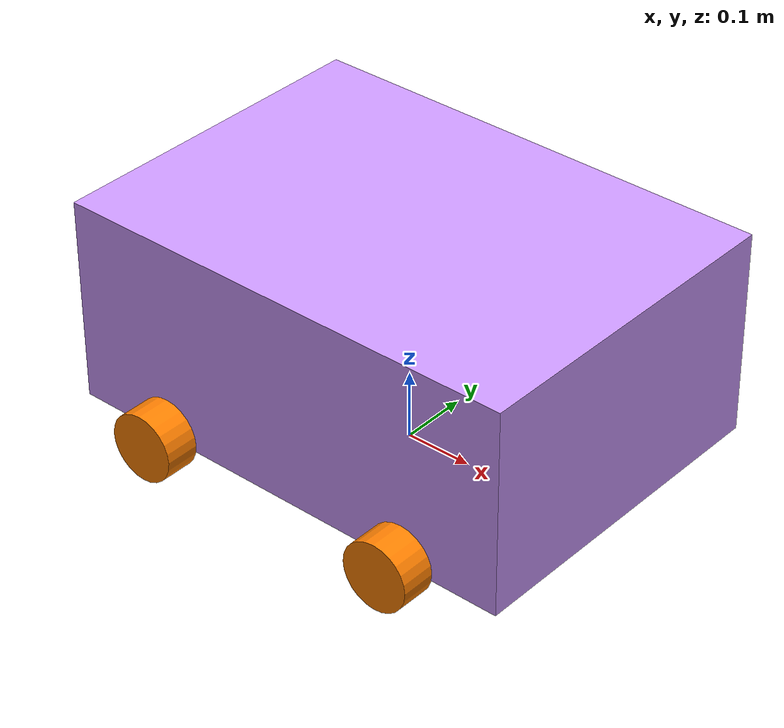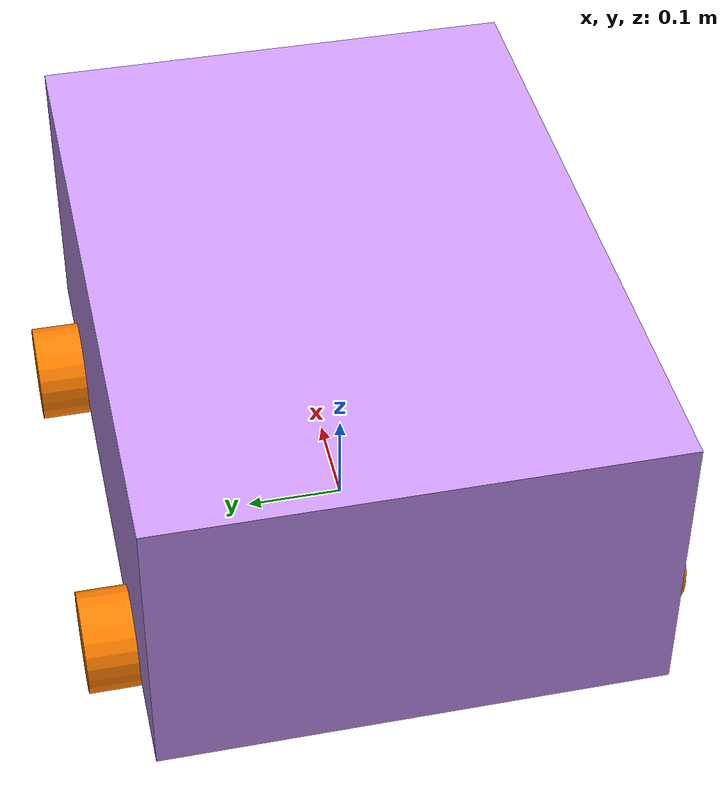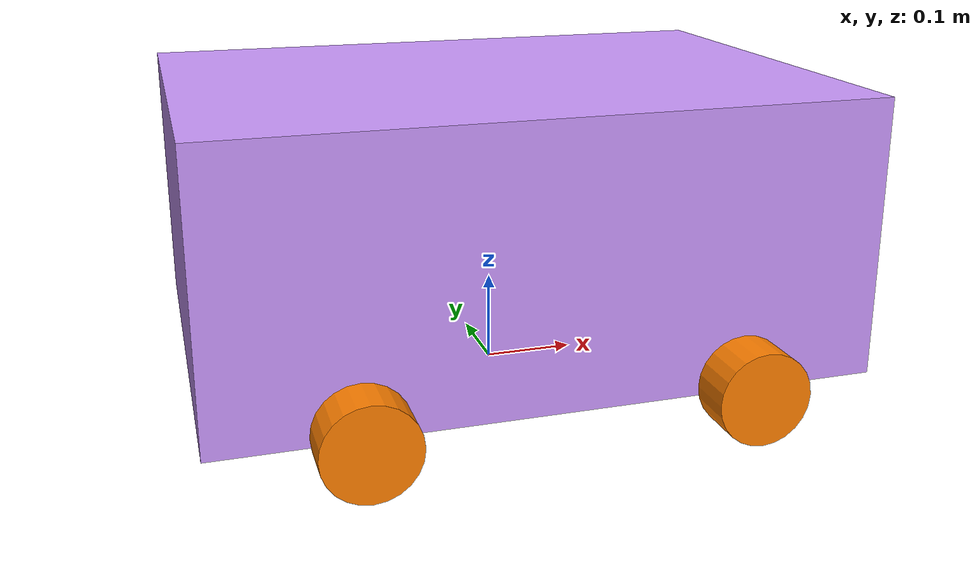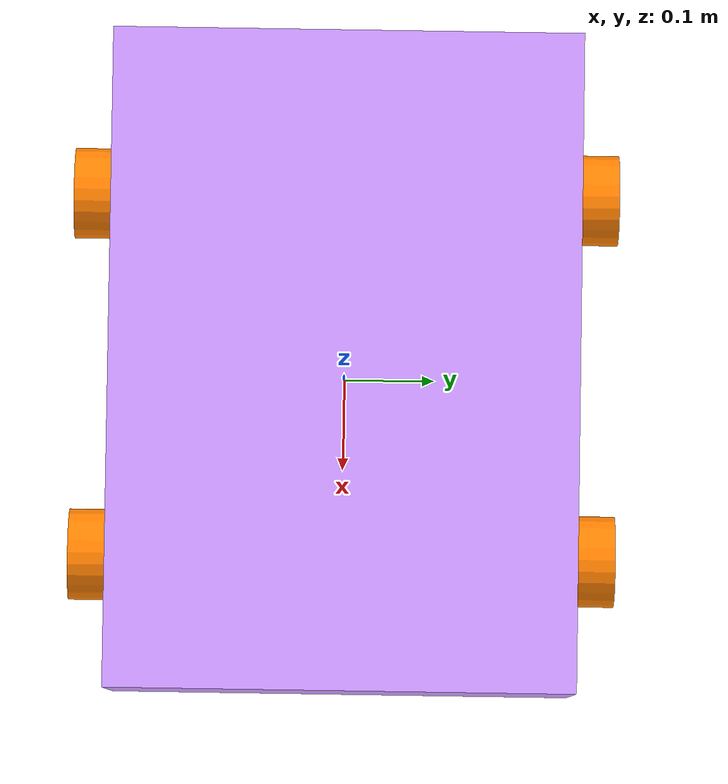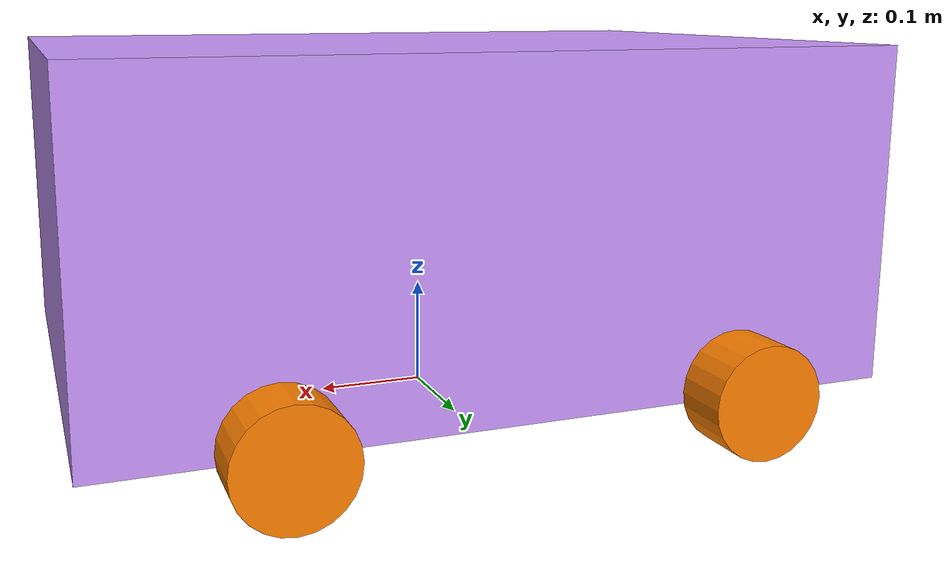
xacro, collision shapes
<?xml version="1.0"?>
<robot xmlns:xacro="http://www.ros.org/wiki/xacro">
  <xacro:property name="PI" value="3.1415926535897931" />
  <xacro:include filename="inertial_macros.xacro" />
  <xacro:include filename="$(find articubot_one)/description/mecanum_wheel/mecanum_wheel.urdf.xacro"/>

  <!-- Material Definitions -->
  <material name="white">
    <color rgba="1 1 1 1"/>
  </material>
  <material name="blue">
    <color rgba="0.2 0.2 1 1"/>
  </material>
  <material name="black">
    <color rgba="0 0 0 1"/>
  </material>
  <material name="red">
    <color rgba="1 0 0 1"/>
  </material>
  <material name="yellow">
    <color rgba="0.8 0.8 0.0 1.0"/>
  </material>
  <material name="dark_grey">
    <color rgba="0.2 0.2 0.2 1.0"/>
  </material>
  <material name="light_grey">
    <color rgba="0.4 0.4 0.4 1.0"/>
  </material>
  <material name="light_purple">
    <color rgba="0.8 0.6 1.0 1.0"/>
  </material>

  <link name="base_footprint">
  </link>

  <joint name="base_footprint_to_base_link" type="fixed">
    <origin xyz="0 0 0.04" rpy="0 0 0" />
    <parent link="base_footprint" />
    <child link="base_link" />
  </joint>

  <!-- Define base link -->
  <link name="base_link">
    <xacro:inertial_box mass="4.0990470908566525" x="0.7" y="0.5" z="0.3">
      <origin xyz="0 0 0" rpy="0 0 0"/>
    </xacro:inertial_box>
    <visual>
      <origin xyz="0 0 0" rpy="0 0 0"/>
      <geometry>
        <mesh filename="file://$(find articubot_one)/description/meshes/base_link.stl" scale="0.001 0.001 0.001"/>
      </geometry>
      <material name="light_purple"/>
    </visual>
    <collision>
      <origin xyz="0 0 0.15" rpy="0 0 0"/>
      <geometry>
        <box size="0.7 0.5 0.3"/>
      </geometry>
    </collision>
  </link>

  <!-- Upper Left Wheel -->
  <xacro:wheel_v0 prefix="upper" parent="base_link">
    <origin xyz="0.2 0.275 0.01" rpy="0 0 ${PI}"/>
    <axis xyz="0 1 0"/>
  </xacro:wheel_v0>

  <!-- Lower Left Wheel -->
  <xacro:wheel_v0 prefix="lower" parent="base_link">
    <origin xyz="-0.2 0.275 0.01" rpy="0 0 ${PI}"/>
    <axis xyz="0 1 0"/>
  </xacro:wheel_v0>

  <!-- Upper Right Wheel -->
  <xacro:wheel_v1 prefix="upper" parent="base_link">
    <origin xyz="0.2 -0.275 0.01" rpy="0 0 0"/>
    <axis xyz="0 -1 0"/>
  </xacro:wheel_v1>

  <!-- Lower Right Wheel -->
  <xacro:wheel_v1 prefix="lower" parent="base_link">
    <origin xyz="-0.2 -0.275 0.01" rpy="0 0 0"/>
    <axis xyz="0 -1 0"/>
  </xacro:wheel_v1>

  <!-- Transmissions -->
  <xacro:wheel_trans_v0 prefix="upper_right"/>
  <xacro:wheel_trans_v0 prefix="upper_left"/>
  <xacro:wheel_trans_v0 prefix="lower_right"/>
  <xacro:wheel_trans_v0 prefix="lower_left"/>

  <!-- Gazebo -->
  <gazebo reference="base_link">
    <material>Gazebo/Green</material>
    <self_collide>false</self_collide>
    <gravity>true</gravity>
  </gazebo>

  <!-- Wheel Gazebo -->
  <xacro:wheel_gazebo_v0 prefix="upper_right"/>
  <xacro:wheel_gazebo_v0 prefix="upper_left"/>
  <xacro:wheel_gazebo_v0 prefix="lower_right"/>
  <xacro:wheel_gazebo_v0 prefix="lower_left"/>
</robot>

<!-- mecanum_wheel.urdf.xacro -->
<robot xmlns:xacro="http://ros.org/wiki/xacro">

  <xacro:include filename="$(find articubot_one)/description/inertial_macros.xacro" />
  <xacro:property name="PI" value="3.1415926535897931" />

  <xacro:property name="wheel_radius" value="0.050" />
  <xacro:property name="wheel_width" value="0.0505" />
  <xacro:include filename="$(find articubot_one)/description/mecanum_wheel/mecanum_wheel.transmission.xacro"/>
  <xacro:include filename="$(find articubot_one)/description/mecanum_wheel/mecanum_wheel.gazebo.xacro"/>

  <!-- Material definition -->
  <material name="orange">
    <color rgba="1 0.5 0 1"/>
  </material>

  <!-- wheel_v0 macro definition -->
  <xacro:macro name="wheel_v0" params="prefix parent *joint_origin *joint_axis">
    <joint name="${prefix}_left_wheel_joint" type="continuous">
      <xacro:insert_block name="joint_origin"/>
      <parent link="${parent}"/>
      <child link="${prefix}_left_wheel_link"/>
      <limit effort="100" velocity="300"/>
      <xacro:insert_block name="joint_axis"/>
    </joint>

    <link name="${prefix}_left_wheel_link">
      <visual>
        <origin xyz="0 0 0" rpy="0 0 0" />
        <geometry>
          <mesh filename="file://$(find articubot_one)/description/meshes/mecanum_wheel_left.STL" scale="0.001 0.001 0.001"/>
        </geometry>
        <material name="orange" />
      </visual>
      <collision>
        <origin xyz="0 0 0" rpy="${PI/2} 0 0"/>
        <geometry>
          <cylinder radius="${wheel_radius}" length="${wheel_width}"/>
        </geometry>
      </collision>
      <xacro:inertial_cylinder mass="0.3844" radius="${wheel_radius}" length="${wheel_width}">
        <origin xyz="0 0 0" rpy="0 0 0"/>
      </xacro:inertial_cylinder>
      <surface>
        <friction>
          <ode>
            <mu>0.9</mu>
            <mu2>0.9</mu2>
            <kp>1e15</kp>
            <kd>1e13</kd>
          </ode>
        </friction>
        <bounce>
          <restitution_coefficient>0.01</restitution_coefficient>
          <threshold>0</threshold>
        </bounce>
        <contact>
          <ode>
            <max_vel>10</max_vel>
          </ode>
        </contact>
      </surface>
    </link>
  </xacro:macro>

  <!-- wheel_v1 macro definition -->
  <xacro:macro name="wheel_v1" params="prefix parent *joint_origin *joint_axis">
    <joint name="${prefix}_right_wheel_joint" type="continuous">
      <xacro:insert_block name="joint_origin"/>
      <parent link="${parent}"/>
      <child link="${prefix}_right_wheel_link"/>
      <limit effort="100" velocity="300"/>
      <xacro:insert_block name="joint_axis"/>
    </joint>

    <link name="${prefix}_right_wheel_link">
      <visual>
        <origin xyz="0 0 0" rpy="0 0 0" />
        <geometry>
          <mesh filename="file://$(find articubot_one)/description/meshes/mecanum_wheel_right.STL" scale="0.001 0.001 0.001"/>
        </geometry>
        <material name="orange" />
      </visual>
      <collision>
        <origin xyz="0 0 0" rpy="${PI/2} 0 0"/>
        <geometry>
          <cylinder radius="${wheel_radius}" length="${wheel_width}"/>
        </geometry>
      </collision>
      <xacro:inertial_cylinder mass="0.3844" radius="${wheel_radius}" length="${wheel_width}">
        <origin xyz="0 0 0" rpy="0 0 0"/>
      </xacro:inertial_cylinder>
      <surface>
        <friction>
          <ode>
            <mu>0.9</mu>
            <mu2>0.9</mu2>
            <kp>1e15</kp>
            <kd>1e13</kd>
          </ode>
        </friction>
        <bounce>
          <restitution_coefficient>0.01</restitution_coefficient>
          <threshold>0</threshold>
        </bounce>
        <contact>
          <ode>
            <max_vel>10</max_vel>
          </ode>
        </contact>
      </surface>
    </link>
  </xacro:macro>

</robot>
